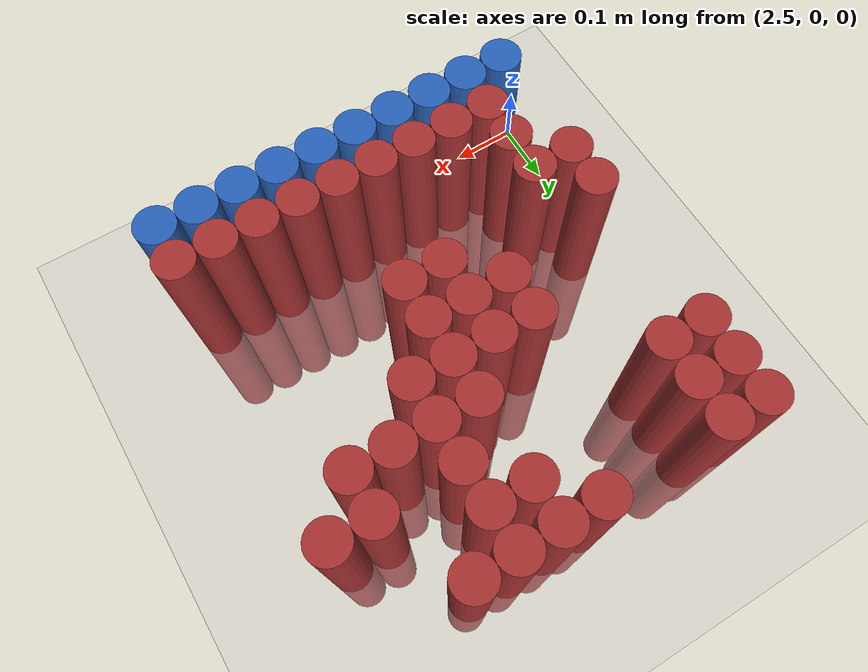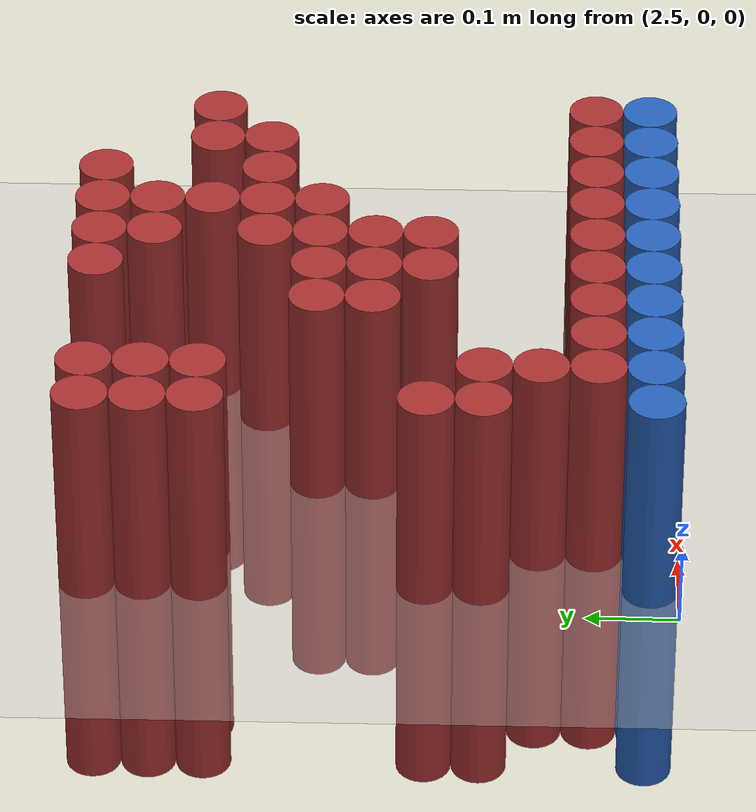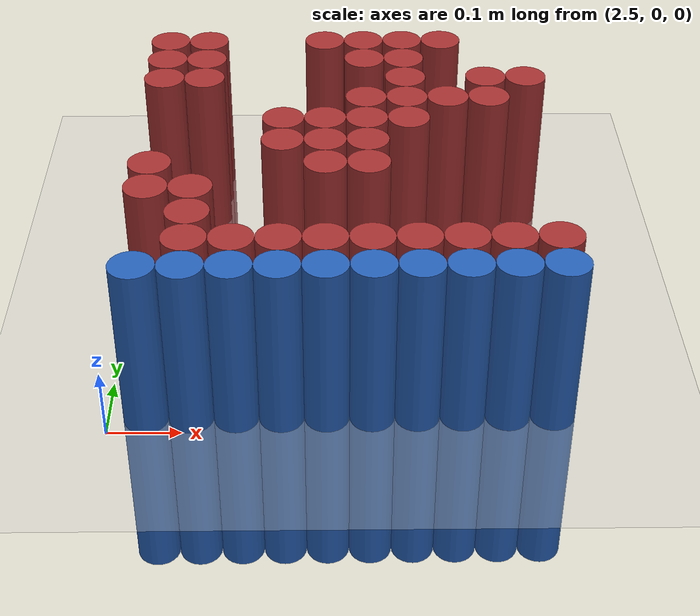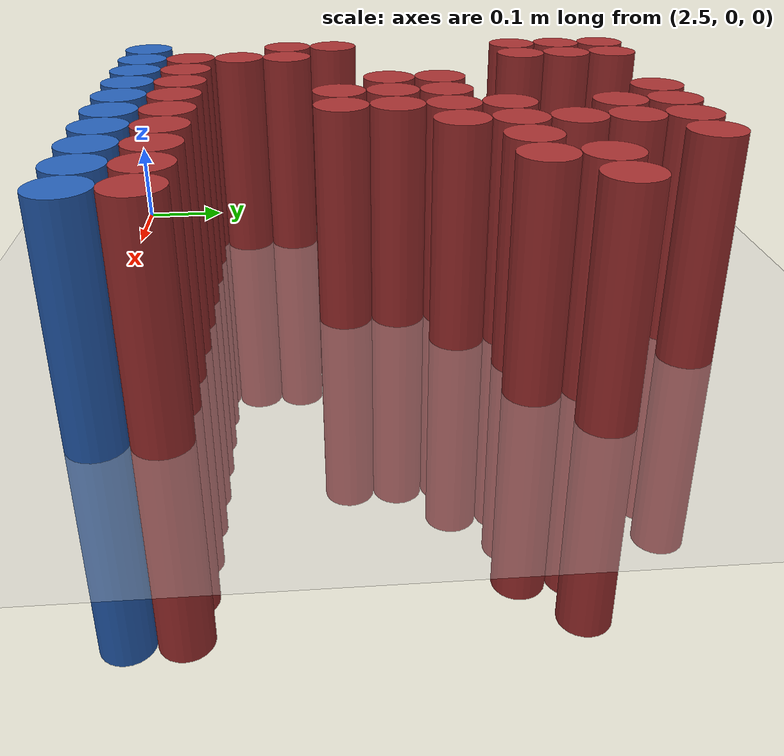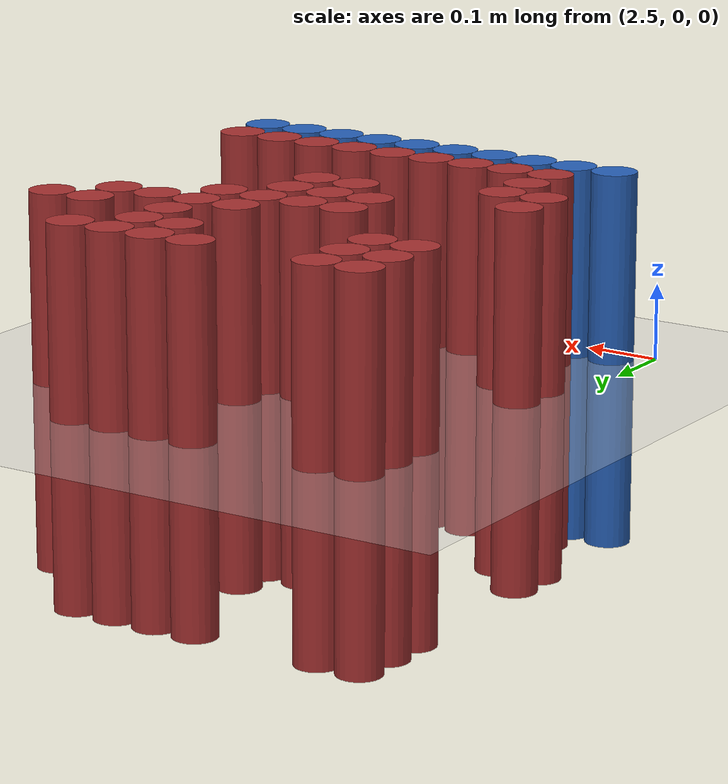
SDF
<sdf version="1.6">
 <world name="default">
  <model name="ground_plane">
   <static>1</static>
   <link name="link">
    <collision name="collision">
     <geometry><plane><normal>0 0 1</normal><size>100 100</size></plane></geometry>
     <surface><friction><ode><mu>100</mu><mu2>50</mu2></ode></friction></surface>
    </collision>
    <visual name="visual">
     <cast_shadows>0</cast_shadows>
     <geometry><plane><normal>0 0 1</normal><size>100 100</size></plane></geometry>
     <material>
      <script><uri>file://media/materials/scripts/gazebo.material</uri><name>Gazebo/Grey</name></script>
     </material>
    </visual>
   </link>
  </model>
  <model name="unit_cylinder_228">
   <static>1</static>
   <pose>2.550000 0.630000 0.000000 0.000000 0.000000 0.000000</pose>
   <link name="link">
    <inertial>
     <mass>1</mass>
     <inertia><ixx>0.145833</ixx><ixy>0</ixy><ixz>0</ixz><iyy>0.145833</iyy><iyz>0</iyz><izz>0.125</izz></inertia>
    </inertial>
    <collision name="collision">
     <geometry><cylinder><radius>0.030000</radius><length>0.5</length></cylinder></geometry>
    </collision>
    <visual name="visual">
     <geometry><cylinder><radius>0.030000</radius><length>0.5</length></cylinder></geometry>
     <material>
      <ambient>0.648000 0.192000 0.192000 1</ambient>
      <diffuse>0.648000 0.192000 0.192000 1</diffuse>
     </material>
     <material>
      <script><name>Gazebo/Grey</name><uri>file://media/materials/scripts/gazebo.material</uri></script>
     </material>
    </visual>
   </link>
  </model>
  <model name="unit_cylinder_229">
   <static>1</static>
   <pose>2.610000 0.630000 0.000000 0.000000 0.000000 0.000000</pose>
   <link name="link">
    <inertial>
     <mass>1</mass>
     <inertia><ixx>0.145833</ixx><ixy>0</ixy><ixz>0</ixz><iyy>0.145833</iyy><iyz>0</iyz><izz>0.125</izz></inertia>
    </inertial>
    <collision name="collision">
     <geometry><cylinder><radius>0.030000</radius><length>0.5</length></cylinder></geometry>
    </collision>
    <visual name="visual">
     <geometry><cylinder><radius>0.030000</radius><length>0.5</length></cylinder></geometry>
     <material>
      <ambient>0.648000 0.192000 0.192000 1</ambient>
      <diffuse>0.648000 0.192000 0.192000 1</diffuse>
     </material>
     <material>
      <script><name>Gazebo/Grey</name><uri>file://media/materials/scripts/gazebo.material</uri></script>
     </material>
    </visual>
   </link>
  </model>
  <model name="unit_cylinder_230">
   <static>1</static>
   <pose>2.790000 0.630000 0.000000 0.000000 0.000000 0.000000</pose>
   <link name="link">
    <inertial>
     <mass>1</mass>
     <inertia><ixx>0.145833</ixx><ixy>0</ixy><ixz>0</ixz><iyy>0.145833</iyy><iyz>0</iyz><izz>0.125</izz></inertia>
    </inertial>
    <collision name="collision">
     <geometry><cylinder><radius>0.030000</radius><length>0.5</length></cylinder></geometry>
    </collision>
    <visual name="visual">
     <geometry><cylinder><radius>0.030000</radius><length>0.5</length></cylinder></geometry>
     <material>
      <ambient>0.648000 0.192000 0.192000 1</ambient>
      <diffuse>0.648000 0.192000 0.192000 1</diffuse>
     </material>
     <material>
      <script><name>Gazebo/Grey</name><uri>file://media/materials/scripts/gazebo.material</uri></script>
     </material>
    </visual>
   </link>
  </model>
  <model name="unit_cylinder_231">
   <static>1</static>
   <pose>2.850000 0.630000 0.000000 0.000000 0.000000 0.000000</pose>
   <link name="link">
    <inertial>
     <mass>1</mass>
     <inertia><ixx>0.145833</ixx><ixy>0</ixy><ixz>0</ixz><iyy>0.145833</iyy><iyz>0</iyz><izz>0.125</izz></inertia>
    </inertial>
    <collision name="collision">
     <geometry><cylinder><radius>0.030000</radius><length>0.5</length></cylinder></geometry>
    </collision>
    <visual name="visual">
     <geometry><cylinder><radius>0.030000</radius><length>0.5</length></cylinder></geometry>
     <material>
      <ambient>0.648000 0.192000 0.192000 1</ambient>
      <diffuse>0.648000 0.192000 0.192000 1</diffuse>
     </material>
     <material>
      <script><name>Gazebo/Grey</name><uri>file://media/materials/scripts/gazebo.material</uri></script>
     </material>
    </visual>
   </link>
  </model>
  <model name="unit_cylinder_232">
   <static>1</static>
   <pose>2.910000 0.630000 0.000000 0.000000 0.000000 0.000000</pose>
   <link name="link">
    <inertial>
     <mass>1</mass>
     <inertia><ixx>0.145833</ixx><ixy>0</ixy><ixz>0</ixz><iyy>0.145833</iyy><iyz>0</iyz><izz>0.125</izz></inertia>
    </inertial>
    <collision name="collision">
     <geometry><cylinder><radius>0.030000</radius><length>0.5</length></cylinder></geometry>
    </collision>
    <visual name="visual">
     <geometry><cylinder><radius>0.030000</radius><length>0.5</length></cylinder></geometry>
     <material>
      <ambient>0.648000 0.192000 0.192000 1</ambient>
      <diffuse>0.648000 0.192000 0.192000 1</diffuse>
     </material>
     <material>
      <script><name>Gazebo/Grey</name><uri>file://media/materials/scripts/gazebo.material</uri></script>
     </material>
    </visual>
   </link>
  </model>
  <model name="unit_cylinder_233">
   <static>1</static>
   <pose>2.970000 0.630000 0.000000 0.000000 0.000000 0.000000</pose>
   <link name="link">
    <inertial>
     <mass>1</mass>
     <inertia><ixx>0.145833</ixx><ixy>0</ixy><ixz>0</ixz><iyy>0.145833</iyy><iyz>0</iyz><izz>0.125</izz></inertia>
    </inertial>
    <collision name="collision">
     <geometry><cylinder><radius>0.030000</radius><length>0.5</length></cylinder></geometry>
    </collision>
    <visual name="visual">
     <geometry><cylinder><radius>0.030000</radius><length>0.5</length></cylinder></geometry>
     <material>
      <ambient>0.648000 0.192000 0.192000 1</ambient>
      <diffuse>0.648000 0.192000 0.192000 1</diffuse>
     </material>
     <material>
      <script><name>Gazebo/Grey</name><uri>file://media/materials/scripts/gazebo.material</uri></script>
     </material>
    </visual>
   </link>
  </model>
  <model name="unit_cylinder_238">
   <static>1</static>
   <pose>2.550000 0.570000 0.000000 0.000000 0.000000 0.000000</pose>
   <link name="link">
    <inertial>
     <mass>1</mass>
     <inertia><ixx>0.145833</ixx><ixy>0</ixy><ixz>0</ixz><iyy>0.145833</iyy><iyz>0</iyz><izz>0.125</izz></inertia>
    </inertial>
    <collision name="collision">
     <geometry><cylinder><radius>0.030000</radius><length>0.5</length></cylinder></geometry>
    </collision>
    <visual name="visual">
     <geometry><cylinder><radius>0.030000</radius><length>0.5</length></cylinder></geometry>
     <material>
      <ambient>0.648000 0.192000 0.192000 1</ambient>
      <diffuse>0.648000 0.192000 0.192000 1</diffuse>
     </material>
     <material>
      <script><name>Gazebo/Grey</name><uri>file://media/materials/scripts/gazebo.material</uri></script>
     </material>
    </visual>
   </link>
  </model>
  <model name="unit_cylinder_239">
   <static>1</static>
   <pose>2.610000 0.570000 0.000000 0.000000 0.000000 0.000000</pose>
   <link name="link">
    <inertial>
     <mass>1</mass>
     <inertia><ixx>0.145833</ixx><ixy>0</ixy><ixz>0</ixz><iyy>0.145833</iyy><iyz>0</iyz><izz>0.125</izz></inertia>
    </inertial>
    <collision name="collision">
     <geometry><cylinder><radius>0.030000</radius><length>0.5</length></cylinder></geometry>
    </collision>
    <visual name="visual">
     <geometry><cylinder><radius>0.030000</radius><length>0.5</length></cylinder></geometry>
     <material>
      <ambient>0.648000 0.192000 0.192000 1</ambient>
      <diffuse>0.648000 0.192000 0.192000 1</diffuse>
     </material>
     <material>
      <script><name>Gazebo/Grey</name><uri>file://media/materials/scripts/gazebo.material</uri></script>
     </material>
    </visual>
   </link>
  </model>
  <model name="unit_cylinder_240">
   <static>1</static>
   <pose>2.850000 0.570000 0.000000 0.000000 0.000000 0.000000</pose>
   <link name="link">
    <inertial>
     <mass>1</mass>
     <inertia><ixx>0.145833</ixx><ixy>0</ixy><ixz>0</ixz><iyy>0.145833</iyy><iyz>0</iyz><izz>0.125</izz></inertia>
    </inertial>
    <collision name="collision">
     <geometry><cylinder><radius>0.030000</radius><length>0.5</length></cylinder></geometry>
    </collision>
    <visual name="visual">
     <geometry><cylinder><radius>0.030000</radius><length>0.5</length></cylinder></geometry>
     <material>
      <ambient>0.648000 0.192000 0.192000 1</ambient>
      <diffuse>0.648000 0.192000 0.192000 1</diffuse>
     </material>
     <material>
      <script><name>Gazebo/Grey</name><uri>file://media/materials/scripts/gazebo.material</uri></script>
     </material>
    </visual>
   </link>
  </model>
  <model name="unit_cylinder_241">
   <static>1</static>
   <pose>2.910000 0.570000 0.000000 0.000000 0.000000 0.000000</pose>
   <link name="link">
    <inertial>
     <mass>1</mass>
     <inertia><ixx>0.145833</ixx><ixy>0</ixy><ixz>0</ixz><iyy>0.145833</iyy><iyz>0</iyz><izz>0.125</izz></inertia>
    </inertial>
    <collision name="collision">
     <geometry><cylinder><radius>0.030000</radius><length>0.5</length></cylinder></geometry>
    </collision>
    <visual name="visual">
     <geometry><cylinder><radius>0.030000</radius><length>0.5</length></cylinder></geometry>
     <material>
      <ambient>0.648000 0.192000 0.192000 1</ambient>
      <diffuse>0.648000 0.192000 0.192000 1</diffuse>
     </material>
     <material>
      <script><name>Gazebo/Grey</name><uri>file://media/materials/scripts/gazebo.material</uri></script>
     </material>
    </visual>
   </link>
  </model>
  <model name="unit_cylinder_250">
   <static>1</static>
   <pose>2.550000 0.510000 0.000000 0.000000 0.000000 0.000000</pose>
   <link name="link">
    <inertial>
     <mass>1</mass>
     <inertia><ixx>0.145833</ixx><ixy>0</ixy><ixz>0</ixz><iyy>0.145833</iyy><iyz>0</iyz><izz>0.125</izz></inertia>
    </inertial>
    <collision name="collision">
     <geometry><cylinder><radius>0.030000</radius><length>0.5</length></cylinder></geometry>
    </collision>
    <visual name="visual">
     <geometry><cylinder><radius>0.030000</radius><length>0.5</length></cylinder></geometry>
     <material>
      <ambient>0.648000 0.192000 0.192000 1</ambient>
      <diffuse>0.648000 0.192000 0.192000 1</diffuse>
     </material>
     <material>
      <script><name>Gazebo/Grey</name><uri>file://media/materials/scripts/gazebo.material</uri></script>
     </material>
    </visual>
   </link>
  </model>
  <model name="unit_cylinder_251">
   <static>1</static>
   <pose>2.610000 0.510000 0.000000 0.000000 0.000000 0.000000</pose>
   <link name="link">
    <inertial>
     <mass>1</mass>
     <inertia><ixx>0.145833</ixx><ixy>0</ixy><ixz>0</ixz><iyy>0.145833</iyy><iyz>0</iyz><izz>0.125</izz></inertia>
    </inertial>
    <collision name="collision">
     <geometry><cylinder><radius>0.030000</radius><length>0.5</length></cylinder></geometry>
    </collision>
    <visual name="visual">
     <geometry><cylinder><radius>0.030000</radius><length>0.5</length></cylinder></geometry>
     <material>
      <ambient>0.648000 0.192000 0.192000 1</ambient>
      <diffuse>0.648000 0.192000 0.192000 1</diffuse>
     </material>
     <material>
      <script><name>Gazebo/Grey</name><uri>file://media/materials/scripts/gazebo.material</uri></script>
     </material>
    </visual>
   </link>
  </model>
  <model name="unit_cylinder_252">
   <static>1</static>
   <pose>2.910000 0.510000 0.000000 0.000000 0.000000 0.000000</pose>
   <link name="link">
    <inertial>
     <mass>1</mass>
     <inertia><ixx>0.145833</ixx><ixy>0</ixy><ixz>0</ixz><iyy>0.145833</iyy><iyz>0</iyz><izz>0.125</izz></inertia>
    </inertial>
    <collision name="collision">
     <geometry><cylinder><radius>0.030000</radius><length>0.5</length></cylinder></geometry>
    </collision>
    <visual name="visual">
     <geometry><cylinder><radius>0.030000</radius><length>0.5</length></cylinder></geometry>
     <material>
      <ambient>0.648000 0.192000 0.192000 1</ambient>
      <diffuse>0.648000 0.192000 0.192000 1</diffuse>
     </material>
     <material>
      <script><name>Gazebo/Grey</name><uri>file://media/materials/scripts/gazebo.material</uri></script>
     </material>
    </visual>
   </link>
  </model>
  <model name="unit_cylinder_253">
   <static>1</static>
   <pose>3.030000 0.510000 0.000000 0.000000 0.000000 0.000000</pose>
   <link name="link">
    <inertial>
     <mass>1</mass>
     <inertia><ixx>0.145833</ixx><ixy>0</ixy><ixz>0</ixz><iyy>0.145833</iyy><iyz>0</iyz><izz>0.125</izz></inertia>
    </inertial>
    <collision name="collision">
     <geometry><cylinder><radius>0.030000</radius><length>0.5</length></cylinder></geometry>
    </collision>
    <visual name="visual">
     <geometry><cylinder><radius>0.030000</radius><length>0.5</length></cylinder></geometry>
     <material>
      <ambient>0.648000 0.192000 0.192000 1</ambient>
      <diffuse>0.648000 0.192000 0.192000 1</diffuse>
     </material>
     <material>
      <script><name>Gazebo/Grey</name><uri>file://media/materials/scripts/gazebo.material</uri></script>
     </material>
    </visual>
   </link>
  </model>
  <model name="unit_cylinder_254">
   <static>1</static>
   <pose>3.090000 0.510000 0.000000 0.000000 0.000000 0.000000</pose>
   <link name="link">
    <inertial>
     <mass>1</mass>
     <inertia><ixx>0.145833</ixx><ixy>0</ixy><ixz>0</ixz><iyy>0.145833</iyy><iyz>0</iyz><izz>0.125</izz></inertia>
    </inertial>
    <collision name="collision">
     <geometry><cylinder><radius>0.030000</radius><length>0.5</length></cylinder></geometry>
    </collision>
    <visual name="visual">
     <geometry><cylinder><radius>0.030000</radius><length>0.5</length></cylinder></geometry>
     <material>
      <ambient>0.648000 0.192000 0.192000 1</ambient>
      <diffuse>0.648000 0.192000 0.192000 1</diffuse>
     </material>
     <material>
      <script><name>Gazebo/Grey</name><uri>file://media/materials/scripts/gazebo.material</uri></script>
     </material>
    </visual>
   </link>
  </model>
  <model name="unit_cylinder_261">
   <static>1</static>
   <pose>2.850000 0.450000 0.000000 0.000000 0.000000 0.000000</pose>
   <link name="link">
    <inertial>
     <mass>1</mass>
     <inertia><ixx>0.145833</ixx><ixy>0</ixy><ixz>0</ixz><iyy>0.145833</iyy><iyz>0</iyz><izz>0.125</izz></inertia>
    </inertial>
    <collision name="collision">
     <geometry><cylinder><radius>0.030000</radius><length>0.5</length></cylinder></geometry>
    </collision>
    <visual name="visual">
     <geometry><cylinder><radius>0.030000</radius><length>0.5</length></cylinder></geometry>
     <material>
      <ambient>0.648000 0.192000 0.192000 1</ambient>
      <diffuse>0.648000 0.192000 0.192000 1</diffuse>
     </material>
     <material>
      <script><name>Gazebo/Grey</name><uri>file://media/materials/scripts/gazebo.material</uri></script>
     </material>
    </visual>
   </link>
  </model>
  <model name="unit_cylinder_262">
   <static>1</static>
   <pose>2.910000 0.450000 0.000000 0.000000 0.000000 0.000000</pose>
   <link name="link">
    <inertial>
     <mass>1</mass>
     <inertia><ixx>0.145833</ixx><ixy>0</ixy><ixz>0</ixz><iyy>0.145833</iyy><iyz>0</iyz><izz>0.125</izz></inertia>
    </inertial>
    <collision name="collision">
     <geometry><cylinder><radius>0.030000</radius><length>0.5</length></cylinder></geometry>
    </collision>
    <visual name="visual">
     <geometry><cylinder><radius>0.030000</radius><length>0.5</length></cylinder></geometry>
     <material>
      <ambient>0.648000 0.192000 0.192000 1</ambient>
      <diffuse>0.648000 0.192000 0.192000 1</diffuse>
     </material>
     <material>
      <script><name>Gazebo/Grey</name><uri>file://media/materials/scripts/gazebo.material</uri></script>
     </material>
    </visual>
   </link>
  </model>
  <model name="unit_cylinder_263">
   <static>1</static>
   <pose>2.970000 0.450000 0.000000 0.000000 0.000000 0.000000</pose>
   <link name="link">
    <inertial>
     <mass>1</mass>
     <inertia><ixx>0.145833</ixx><ixy>0</ixy><ixz>0</ixz><iyy>0.145833</iyy><iyz>0</iyz><izz>0.125</izz></inertia>
    </inertial>
    <collision name="collision">
     <geometry><cylinder><radius>0.030000</radius><length>0.5</length></cylinder></geometry>
    </collision>
    <visual name="visual">
     <geometry><cylinder><radius>0.030000</radius><length>0.5</length></cylinder></geometry>
     <material>
      <ambient>0.648000 0.192000 0.192000 1</ambient>
      <diffuse>0.648000 0.192000 0.192000 1</diffuse>
     </material>
     <material>
      <script><name>Gazebo/Grey</name><uri>file://media/materials/scripts/gazebo.material</uri></script>
     </material>
    </visual>
   </link>
  </model>
  <model name="unit_cylinder_264">
   <static>1</static>
   <pose>3.030000 0.450000 0.000000 0.000000 0.000000 0.000000</pose>
   <link name="link">
    <inertial>
     <mass>1</mass>
     <inertia><ixx>0.145833</ixx><ixy>0</ixy><ixz>0</ixz><iyy>0.145833</iyy><iyz>0</iyz><izz>0.125</izz></inertia>
    </inertial>
    <collision name="collision">
     <geometry><cylinder><radius>0.030000</radius><length>0.5</length></cylinder></geometry>
    </collision>
    <visual name="visual">
     <geometry><cylinder><radius>0.030000</radius><length>0.5</length></cylinder></geometry>
     <material>
      <ambient>0.648000 0.192000 0.192000 1</ambient>
      <diffuse>0.648000 0.192000 0.192000 1</diffuse>
     </material>
     <material>
      <script><name>Gazebo/Grey</name><uri>file://media/materials/scripts/gazebo.material</uri></script>
     </material>
    </visual>
   </link>
  </model>
  <model name="unit_cylinder_268">
   <static>1</static>
   <pose>2.730000 0.390000 0.000000 0.000000 0.000000 0.000000</pose>
   <link name="link">
    <inertial>
     <mass>1</mass>
     <inertia><ixx>0.145833</ixx><ixy>0</ixy><ixz>0</ixz><iyy>0.145833</iyy><iyz>0</iyz><izz>0.125</izz></inertia>
    </inertial>
    <collision name="collision">
     <geometry><cylinder><radius>0.030000</radius><length>0.5</length></cylinder></geometry>
    </collision>
    <visual name="visual">
     <geometry><cylinder><radius>0.030000</radius><length>0.5</length></cylinder></geometry>
     <material>
      <ambient>0.648000 0.192000 0.192000 1</ambient>
      <diffuse>0.648000 0.192000 0.192000 1</diffuse>
     </material>
     <material>
      <script><name>Gazebo/Grey</name><uri>file://media/materials/scripts/gazebo.material</uri></script>
     </material>
    </visual>
   </link>
  </model>
  <model name="unit_cylinder_269">
   <static>1</static>
   <pose>2.790000 0.390000 0.000000 0.000000 0.000000 0.000000</pose>
   <link name="link">
    <inertial>
     <mass>1</mass>
     <inertia><ixx>0.145833</ixx><ixy>0</ixy><ixz>0</ixz><iyy>0.145833</iyy><iyz>0</iyz><izz>0.125</izz></inertia>
    </inertial>
    <collision name="collision">
     <geometry><cylinder><radius>0.030000</radius><length>0.5</length></cylinder></geometry>
    </collision>
    <visual name="visual">
     <geometry><cylinder><radius>0.030000</radius><length>0.5</length></cylinder></geometry>
     <material>
      <ambient>0.648000 0.192000 0.192000 1</ambient>
      <diffuse>0.648000 0.192000 0.192000 1</diffuse>
     </material>
     <material>
      <script><name>Gazebo/Grey</name><uri>file://media/materials/scripts/gazebo.material</uri></script>
     </material>
    </visual>
   </link>
  </model>
  <model name="unit_cylinder_270">
   <static>1</static>
   <pose>2.850000 0.390000 0.000000 0.000000 0.000000 0.000000</pose>
   <link name="link">
    <inertial>
     <mass>1</mass>
     <inertia><ixx>0.145833</ixx><ixy>0</ixy><ixz>0</ixz><iyy>0.145833</iyy><iyz>0</iyz><izz>0.125</izz></inertia>
    </inertial>
    <collision name="collision">
     <geometry><cylinder><radius>0.030000</radius><length>0.5</length></cylinder></geometry>
    </collision>
    <visual name="visual">
     <geometry><cylinder><radius>0.030000</radius><length>0.5</length></cylinder></geometry>
     <material>
      <ambient>0.648000 0.192000 0.192000 1</ambient>
      <diffuse>0.648000 0.192000 0.192000 1</diffuse>
     </material>
     <material>
      <script><name>Gazebo/Grey</name><uri>file://media/materials/scripts/gazebo.material</uri></script>
     </material>
    </visual>
   </link>
  </model>
  <model name="unit_cylinder_271">
   <static>1</static>
   <pose>2.910000 0.390000 0.000000 0.000000 0.000000 0.000000</pose>
   <link name="link">
    <inertial>
     <mass>1</mass>
     <inertia><ixx>0.145833</ixx><ixy>0</ixy><ixz>0</ixz><iyy>0.145833</iyy><iyz>0</iyz><izz>0.125</izz></inertia>
    </inertial>
    <collision name="collision">
     <geometry><cylinder><radius>0.030000</radius><length>0.5</length></cylinder></geometry>
    </collision>
    <visual name="visual">
     <geometry><cylinder><radius>0.030000</radius><length>0.5</length></cylinder></geometry>
     <material>
      <ambient>0.648000 0.192000 0.192000 1</ambient>
      <diffuse>0.648000 0.192000 0.192000 1</diffuse>
     </material>
     <material>
      <script><name>Gazebo/Grey</name><uri>file://media/materials/scripts/gazebo.material</uri></script>
     </material>
    </visual>
   </link>
  </model>
  <model name="unit_cylinder_274">
   <static>1</static>
   <pose>2.730000 0.330000 0.000000 0.000000 0.000000 0.000000</pose>
   <link name="link">
    <inertial>
     <mass>1</mass>
     <inertia><ixx>0.145833</ixx><ixy>0</ixy><ixz>0</ixz><iyy>0.145833</iyy><iyz>0</iyz><izz>0.125</izz></inertia>
    </inertial>
    <collision name="collision">
     <geometry><cylinder><radius>0.030000</radius><length>0.5</length></cylinder></geometry>
    </collision>
    <visual name="visual">
     <geometry><cylinder><radius>0.030000</radius><length>0.5</length></cylinder></geometry>
     <material>
      <ambient>0.648000 0.192000 0.192000 1</ambient>
      <diffuse>0.648000 0.192000 0.192000 1</diffuse>
     </material>
     <material>
      <script><name>Gazebo/Grey</name><uri>file://media/materials/scripts/gazebo.material</uri></script>
     </material>
    </visual>
   </link>
  </model>
  <model name="unit_cylinder_275">
   <static>1</static>
   <pose>2.790000 0.330000 0.000000 0.000000 0.000000 0.000000</pose>
   <link name="link">
    <inertial>
     <mass>1</mass>
     <inertia><ixx>0.145833</ixx><ixy>0</ixy><ixz>0</ixz><iyy>0.145833</iyy><iyz>0</iyz><izz>0.125</izz></inertia>
    </inertial>
    <collision name="collision">
     <geometry><cylinder><radius>0.030000</radius><length>0.5</length></cylinder></geometry>
    </collision>
    <visual name="visual">
     <geometry><cylinder><radius>0.030000</radius><length>0.5</length></cylinder></geometry>
     <material>
      <ambient>0.648000 0.192000 0.192000 1</ambient>
      <diffuse>0.648000 0.192000 0.192000 1</diffuse>
     </material>
     <material>
      <script><name>Gazebo/Grey</name><uri>file://media/materials/scripts/gazebo.material</uri></script>
     </material>
    </visual>
   </link>
  </model>
  <model name="unit_cylinder_276">
   <static>1</static>
   <pose>2.850000 0.330000 0.000000 0.000000 0.000000 0.000000</pose>
   <link name="link">
    <inertial>
     <mass>1</mass>
     <inertia><ixx>0.145833</ixx><ixy>0</ixy><ixz>0</ixz><iyy>0.145833</iyy><iyz>0</iyz><izz>0.125</izz></inertia>
    </inertial>
    <collision name="collision">
     <geometry><cylinder><radius>0.030000</radius><length>0.5</length></cylinder></geometry>
    </collision>
    <visual name="visual">
     <geometry><cylinder><radius>0.030000</radius><length>0.5</length></cylinder></geometry>
     <material>
      <ambient>0.648000 0.192000 0.192000 1</ambient>
      <diffuse>0.648000 0.192000 0.192000 1</diffuse>
     </material>
     <material>
      <script><name>Gazebo/Grey</name><uri>file://media/materials/scripts/gazebo.material</uri></script>
     </material>
    </visual>
   </link>
  </model>
  <model name="unit_cylinder_283">
   <static>1</static>
   <pose>2.550000 0.270000 0.000000 0.000000 0.000000 0.000000</pose>
   <link name="link">
    <inertial>
     <mass>1</mass>
     <inertia><ixx>0.145833</ixx><ixy>0</ixy><ixz>0</ixz><iyy>0.145833</iyy><iyz>0</iyz><izz>0.125</izz></inertia>
    </inertial>
    <collision name="collision">
     <geometry><cylinder><radius>0.030000</radius><length>0.5</length></cylinder></geometry>
    </collision>
    <visual name="visual">
     <geometry><cylinder><radius>0.030000</radius><length>0.5</length></cylinder></geometry>
     <material>
      <ambient>0.648000 0.192000 0.192000 1</ambient>
      <diffuse>0.648000 0.192000 0.192000 1</diffuse>
     </material>
     <material>
      <script><name>Gazebo/Grey</name><uri>file://media/materials/scripts/gazebo.material</uri></script>
     </material>
    </visual>
   </link>
  </model>
  <model name="unit_cylinder_284">
   <static>1</static>
   <pose>2.790000 0.270000 0.000000 0.000000 0.000000 0.000000</pose>
   <link name="link">
    <inertial>
     <mass>1</mass>
     <inertia><ixx>0.145833</ixx><ixy>0</ixy><ixz>0</ixz><iyy>0.145833</iyy><iyz>0</iyz><izz>0.125</izz></inertia>
    </inertial>
    <collision name="collision">
     <geometry><cylinder><radius>0.030000</radius><length>0.5</length></cylinder></geometry>
    </collision>
    <visual name="visual">
     <geometry><cylinder><radius>0.030000</radius><length>0.5</length></cylinder></geometry>
     <material>
      <ambient>0.648000 0.192000 0.192000 1</ambient>
      <diffuse>0.648000 0.192000 0.192000 1</diffuse>
     </material>
     <material>
      <script><name>Gazebo/Grey</name><uri>file://media/materials/scripts/gazebo.material</uri></script>
     </material>
    </visual>
   </link>
  </model>
  <model name="unit_cylinder_285">
   <static>1</static>
   <pose>2.850000 0.270000 0.000000 0.000000 0.000000 0.000000</pose>
   <link name="link">
    <inertial>
     <mass>1</mass>
     <inertia><ixx>0.145833</ixx><ixy>0</ixy><ixz>0</ixz><iyy>0.145833</iyy><iyz>0</iyz><izz>0.125</izz></inertia>
    </inertial>
    <collision name="collision">
     <geometry><cylinder><radius>0.030000</radius><length>0.5</length></cylinder></geometry>
    </collision>
    <visual name="visual">
     <geometry><cylinder><radius>0.030000</radius><length>0.5</length></cylinder></geometry>
     <material>
      <ambient>0.648000 0.192000 0.192000 1</ambient>
      <diffuse>0.648000 0.192000 0.192000 1</diffuse>
     </material>
     <material>
      <script><name>Gazebo/Grey</name><uri>file://media/materials/scripts/gazebo.material</uri></script>
     </material>
    </visual>
   </link>
  </model>
  <model name="unit_cylinder_293">
   <static>1</static>
   <pose>2.550000 0.210000 0.000000 0.000000 0.000000 0.000000</pose>
   <link name="link">
    <inertial>
     <mass>1</mass>
     <inertia><ixx>0.145833</ixx><ixy>0</ixy><ixz>0</ixz><iyy>0.145833</iyy><iyz>0</iyz><izz>0.125</izz></inertia>
    </inertial>
    <collision name="collision">
     <geometry><cylinder><radius>0.030000</radius><length>0.5</length></cylinder></geometry>
    </collision>
    <visual name="visual">
     <geometry><cylinder><radius>0.030000</radius><length>0.5</length></cylinder></geometry>
     <material>
      <ambient>0.648000 0.192000 0.192000 1</ambient>
      <diffuse>0.648000 0.192000 0.192000 1</diffuse>
     </material>
     <material>
      <script><name>Gazebo/Grey</name><uri>file://media/materials/scripts/gazebo.material</uri></script>
     </material>
    </visual>
   </link>
  </model>
  <model name="unit_cylinder_294">
   <static>1</static>
   <pose>2.610000 0.210000 0.000000 0.000000 0.000000 0.000000</pose>
   <link name="link">
    <inertial>
     <mass>1</mass>
     <inertia><ixx>0.145833</ixx><ixy>0</ixy><ixz>0</ixz><iyy>0.145833</iyy><iyz>0</iyz><izz>0.125</izz></inertia>
    </inertial>
    <collision name="collision">
     <geometry><cylinder><radius>0.030000</radius><length>0.5</length></cylinder></geometry>
    </collision>
    <visual name="visual">
     <geometry><cylinder><radius>0.030000</radius><length>0.5</length></cylinder></geometry>
     <material>
      <ambient>0.648000 0.192000 0.192000 1</ambient>
      <diffuse>0.648000 0.192000 0.192000 1</diffuse>
     </material>
     <material>
      <script><name>Gazebo/Grey</name><uri>file://media/materials/scripts/gazebo.material</uri></script>
     </material>
    </visual>
   </link>
  </model>
  <model name="unit_cylinder_300">
   <static>1</static>
   <pose>2.610000 0.150000 0.000000 0.000000 0.000000 0.000000</pose>
   <link name="link">
    <inertial>
     <mass>1</mass>
     <inertia><ixx>0.145833</ixx><ixy>0</ixy><ixz>0</ixz><iyy>0.145833</iyy><iyz>0</iyz><izz>0.125</izz></inertia>
    </inertial>
    <collision name="collision">
     <geometry><cylinder><radius>0.030000</radius><length>0.5</length></cylinder></geometry>
    </collision>
    <visual name="visual">
     <geometry><cylinder><radius>0.030000</radius><length>0.5</length></cylinder></geometry>
     <material>
      <ambient>0.648000 0.192000 0.192000 1</ambient>
      <diffuse>0.648000 0.192000 0.192000 1</diffuse>
     </material>
     <material>
      <script><name>Gazebo/Grey</name><uri>file://media/materials/scripts/gazebo.material</uri></script>
     </material>
    </visual>
   </link>
  </model>
  <model name="unit_cylinder_309">
   <static>1</static>
   <pose>2.610000 0.090000 0.000000 0.000000 0.000000 0.000000</pose>
   <link name="link">
    <inertial>
     <mass>1</mass>
     <inertia><ixx>0.145833</ixx><ixy>0</ixy><ixz>0</ixz><iyy>0.145833</iyy><iyz>0</iyz><izz>0.125</izz></inertia>
    </inertial>
    <collision name="collision">
     <geometry><cylinder><radius>0.030000</radius><length>0.5</length></cylinder></geometry>
    </collision>
    <visual name="visual">
     <geometry><cylinder><radius>0.030000</radius><length>0.5</length></cylinder></geometry>
     <material>
      <ambient>0.648000 0.192000 0.192000 1</ambient>
      <diffuse>0.648000 0.192000 0.192000 1</diffuse>
     </material>
     <material>
      <script><name>Gazebo/Grey</name><uri>file://media/materials/scripts/gazebo.material</uri></script>
     </material>
    </visual>
   </link>
  </model>
  <model name="unit_cylinder_310">
   <static>1</static>
   <pose>2.670000 0.090000 0.000000 0.000000 0.000000 0.000000</pose>
   <link name="link">
    <inertial>
     <mass>1</mass>
     <inertia><ixx>0.145833</ixx><ixy>0</ixy><ixz>0</ixz><iyy>0.145833</iyy><iyz>0</iyz><izz>0.125</izz></inertia>
    </inertial>
    <collision name="collision">
     <geometry><cylinder><radius>0.030000</radius><length>0.5</length></cylinder></geometry>
    </collision>
    <visual name="visual">
     <geometry><cylinder><radius>0.030000</radius><length>0.5</length></cylinder></geometry>
     <material>
      <ambient>0.648000 0.192000 0.192000 1</ambient>
      <diffuse>0.648000 0.192000 0.192000 1</diffuse>
     </material>
     <material>
      <script><name>Gazebo/Grey</name><uri>file://media/materials/scripts/gazebo.material</uri></script>
     </material>
    </visual>
   </link>
  </model>
  <model name="unit_cylinder_311">
   <static>1</static>
   <pose>2.730000 0.090000 0.000000 0.000000 0.000000 0.000000</pose>
   <link name="link">
    <inertial>
     <mass>1</mass>
     <inertia><ixx>0.145833</ixx><ixy>0</ixy><ixz>0</ixz><iyy>0.145833</iyy><iyz>0</iyz><izz>0.125</izz></inertia>
    </inertial>
    <collision name="collision">
     <geometry><cylinder><radius>0.030000</radius><length>0.5</length></cylinder></geometry>
    </collision>
    <visual name="visual">
     <geometry><cylinder><radius>0.030000</radius><length>0.5</length></cylinder></geometry>
     <material>
      <ambient>0.648000 0.192000 0.192000 1</ambient>
      <diffuse>0.648000 0.192000 0.192000 1</diffuse>
     </material>
     <material>
      <script><name>Gazebo/Grey</name><uri>file://media/materials/scripts/gazebo.material</uri></script>
     </material>
    </visual>
   </link>
  </model>
  <model name="unit_cylinder_312">
   <static>1</static>
   <pose>2.790000 0.090000 0.000000 0.000000 0.000000 0.000000</pose>
   <link name="link">
    <inertial>
     <mass>1</mass>
     <inertia><ixx>0.145833</ixx><ixy>0</ixy><ixz>0</ixz><iyy>0.145833</iyy><iyz>0</iyz><izz>0.125</izz></inertia>
    </inertial>
    <collision name="collision">
     <geometry><cylinder><radius>0.030000</radius><length>0.5</length></cylinder></geometry>
    </collision>
    <visual name="visual">
     <geometry><cylinder><radius>0.030000</radius><length>0.5</length></cylinder></geometry>
     <material>
      <ambient>0.648000 0.192000 0.192000 1</ambient>
      <diffuse>0.648000 0.192000 0.192000 1</diffuse>
     </material>
     <material>
      <script><name>Gazebo/Grey</name><uri>file://media/materials/scripts/gazebo.material</uri></script>
     </material>
    </visual>
   </link>
  </model>
  <model name="unit_cylinder_313">
   <static>1</static>
   <pose>2.850000 0.090000 0.000000 0.000000 0.000000 0.000000</pose>
   <link name="link">
    <inertial>
     <mass>1</mass>
     <inertia><ixx>0.145833</ixx><ixy>0</ixy><ixz>0</ixz><iyy>0.145833</iyy><iyz>0</iyz><izz>0.125</izz></inertia>
    </inertial>
    <collision name="collision">
     <geometry><cylinder><radius>0.030000</radius><length>0.5</length></cylinder></geometry>
    </collision>
    <visual name="visual">
     <geometry><cylinder><radius>0.030000</radius><length>0.5</length></cylinder></geometry>
     <material>
      <ambient>0.648000 0.192000 0.192000 1</ambient>
      <diffuse>0.648000 0.192000 0.192000 1</diffuse>
     </material>
     <material>
      <script><name>Gazebo/Grey</name><uri>file://media/materials/scripts/gazebo.material</uri></script>
     </material>
    </visual>
   </link>
  </model>
  <model name="unit_cylinder_314">
   <static>1</static>
   <pose>2.910000 0.090000 0.000000 0.000000 0.000000 0.000000</pose>
   <link name="link">
    <inertial>
     <mass>1</mass>
     <inertia><ixx>0.145833</ixx><ixy>0</ixy><ixz>0</ixz><iyy>0.145833</iyy><iyz>0</iyz><izz>0.125</izz></inertia>
    </inertial>
    <collision name="collision">
     <geometry><cylinder><radius>0.030000</radius><length>0.5</length></cylinder></geometry>
    </collision>
    <visual name="visual">
     <geometry><cylinder><radius>0.030000</radius><length>0.5</length></cylinder></geometry>
     <material>
      <ambient>0.648000 0.192000 0.192000 1</ambient>
      <diffuse>0.648000 0.192000 0.192000 1</diffuse>
     </material>
     <material>
      <script><name>Gazebo/Grey</name><uri>file://media/materials/scripts/gazebo.material</uri></script>
     </material>
    </visual>
   </link>
  </model>
  <model name="unit_cylinder_315">
   <static>1</static>
   <pose>2.970000 0.090000 0.000000 0.000000 0.000000 0.000000</pose>
   <link name="link">
    <inertial>
     <mass>1</mass>
     <inertia><ixx>0.145833</ixx><ixy>0</ixy><ixz>0</ixz><iyy>0.145833</iyy><iyz>0</iyz><izz>0.125</izz></inertia>
    </inertial>
    <collision name="collision">
     <geometry><cylinder><radius>0.030000</radius><length>0.5</length></cylinder></geometry>
    </collision>
    <visual name="visual">
     <geometry><cylinder><radius>0.030000</radius><length>0.5</length></cylinder></geometry>
     <material>
      <ambient>0.648000 0.192000 0.192000 1</ambient>
      <diffuse>0.648000 0.192000 0.192000 1</diffuse>
     </material>
     <material>
      <script><name>Gazebo/Grey</name><uri>file://media/materials/scripts/gazebo.material</uri></script>
     </material>
    </visual>
   </link>
  </model>
  <model name="unit_cylinder_316">
   <static>1</static>
   <pose>3.030000 0.090000 0.000000 0.000000 0.000000 0.000000</pose>
   <link name="link">
    <inertial>
     <mass>1</mass>
     <inertia><ixx>0.145833</ixx><ixy>0</ixy><ixz>0</ixz><iyy>0.145833</iyy><iyz>0</iyz><izz>0.125</izz></inertia>
    </inertial>
    <collision name="collision">
     <geometry><cylinder><radius>0.030000</radius><length>0.5</length></cylinder></geometry>
    </collision>
    <visual name="visual">
     <geometry><cylinder><radius>0.030000</radius><length>0.5</length></cylinder></geometry>
     <material>
      <ambient>0.648000 0.192000 0.192000 1</ambient>
      <diffuse>0.648000 0.192000 0.192000 1</diffuse>
     </material>
     <material>
      <script><name>Gazebo/Grey</name><uri>file://media/materials/scripts/gazebo.material</uri></script>
     </material>
    </visual>
   </link>
  </model>
  <model name="unit_cylinder_317">
   <static>1</static>
   <pose>3.090000 0.090000 0.000000 0.000000 0.000000 0.000000</pose>
   <link name="link">
    <inertial>
     <mass>1</mass>
     <inertia><ixx>0.145833</ixx><ixy>0</ixy><ixz>0</ixz><iyy>0.145833</iyy><iyz>0</iyz><izz>0.125</izz></inertia>
    </inertial>
    <collision name="collision">
     <geometry><cylinder><radius>0.030000</radius><length>0.5</length></cylinder></geometry>
    </collision>
    <visual name="visual">
     <geometry><cylinder><radius>0.030000</radius><length>0.5</length></cylinder></geometry>
     <material>
      <ambient>0.648000 0.192000 0.192000 1</ambient>
      <diffuse>0.648000 0.192000 0.192000 1</diffuse>
     </material>
     <material>
      <script><name>Gazebo/Grey</name><uri>file://media/materials/scripts/gazebo.material</uri></script>
     </material>
    </visual>
   </link>
  </model>
  <model name="unit_cylinder_335">
   <static>1</static>
   <pose>2.550000 0.030000 0.000000 0.000000 0.000000 0.000000</pose>
   <link name="link">
    <inertial>
     <mass>1</mass>
     <inertia><ixx>0.145833</ixx><ixy>0</ixy><ixz>0</ixz><iyy>0.145833</iyy><iyz>0</iyz><izz>0.125</izz></inertia>
    </inertial>
    <collision name="collision">
     <geometry><cylinder><radius>0.030000</radius><length>0.5</length></cylinder></geometry>
    </collision>
    <visual name="visual">
     <geometry><cylinder><radius>0.030000</radius><length>0.5</length></cylinder></geometry>
     <material>
      <ambient>0.152000 0.379000 0.720000 1</ambient>
      <diffuse>0.152000 0.379000 0.720000 1</diffuse>
     </material>
     <material>
      <script><name>Gazebo/Grey</name><uri>file://media/materials/scripts/gazebo.material</uri></script>
     </material>
    </visual>
   </link>
  </model>
  <model name="unit_cylinder_336">
   <static>1</static>
   <pose>2.610000 0.030000 0.000000 0.000000 0.000000 0.000000</pose>
   <link name="link">
    <inertial>
     <mass>1</mass>
     <inertia><ixx>0.145833</ixx><ixy>0</ixy><ixz>0</ixz><iyy>0.145833</iyy><iyz>0</iyz><izz>0.125</izz></inertia>
    </inertial>
    <collision name="collision">
     <geometry><cylinder><radius>0.030000</radius><length>0.5</length></cylinder></geometry>
    </collision>
    <visual name="visual">
     <geometry><cylinder><radius>0.030000</radius><length>0.5</length></cylinder></geometry>
     <material>
      <ambient>0.152000 0.379000 0.720000 1</ambient>
      <diffuse>0.152000 0.379000 0.720000 1</diffuse>
     </material>
     <material>
      <script><name>Gazebo/Grey</name><uri>file://media/materials/scripts/gazebo.material</uri></script>
     </material>
    </visual>
   </link>
  </model>
  <model name="unit_cylinder_337">
   <static>1</static>
   <pose>2.670000 0.030000 0.000000 0.000000 0.000000 0.000000</pose>
   <link name="link">
    <inertial>
     <mass>1</mass>
     <inertia><ixx>0.145833</ixx><ixy>0</ixy><ixz>0</ixz><iyy>0.145833</iyy><iyz>0</iyz><izz>0.125</izz></inertia>
    </inertial>
    <collision name="collision">
     <geometry><cylinder><radius>0.030000</radius><length>0.5</length></cylinder></geometry>
    </collision>
    <visual name="visual">
     <geometry><cylinder><radius>0.030000</radius><length>0.5</length></cylinder></geometry>
     <material>
      <ambient>0.152000 0.379000 0.720000 1</ambient>
      <diffuse>0.152000 0.379000 0.720000 1</diffuse>
     </material>
     <material>
      <script><name>Gazebo/Grey</name><uri>file://media/materials/scripts/gazebo.material</uri></script>
     </material>
    </visual>
   </link>
  </model>
  <model name="unit_cylinder_338">
   <static>1</static>
   <pose>2.730000 0.030000 0.000000 0.000000 0.000000 0.000000</pose>
   <link name="link">
    <inertial>
     <mass>1</mass>
     <inertia><ixx>0.145833</ixx><ixy>0</ixy><ixz>0</ixz><iyy>0.145833</iyy><iyz>0</iyz><izz>0.125</izz></inertia>
    </inertial>
    <collision name="collision">
     <geometry><cylinder><radius>0.030000</radius><length>0.5</length></cylinder></geometry>
    </collision>
    <visual name="visual">
     <geometry><cylinder><radius>0.030000</radius><length>0.5</length></cylinder></geometry>
     <material>
      <ambient>0.152000 0.379000 0.720000 1</ambient>
      <diffuse>0.152000 0.379000 0.720000 1</diffuse>
     </material>
     <material>
      <script><name>Gazebo/Grey</name><uri>file://media/materials/scripts/gazebo.material</uri></script>
     </material>
    </visual>
   </link>
  </model>
  <model name="unit_cylinder_339">
   <static>1</static>
   <pose>2.790000 0.030000 0.000000 0.000000 0.000000 0.000000</pose>
   <link name="link">
    <inertial>
     <mass>1</mass>
     <inertia><ixx>0.145833</ixx><ixy>0</ixy><ixz>0</ixz><iyy>0.145833</iyy><iyz>0</iyz><izz>0.125</izz></inertia>
    </inertial>
    <collision name="collision">
     <geometry><cylinder><radius>0.030000</radius><length>0.5</length></cylinder></geometry>
    </collision>
    <visual name="visual">
     <geometry><cylinder><radius>0.030000</radius><length>0.5</length></cylinder></geometry>
     <material>
      <ambient>0.152000 0.379000 0.720000 1</ambient>
      <diffuse>0.152000 0.379000 0.720000 1</diffuse>
     </material>
     <material>
      <script><name>Gazebo/Grey</name><uri>file://media/materials/scripts/gazebo.material</uri></script>
     </material>
    </visual>
   </link>
  </model>
  <model name="unit_cylinder_340">
   <static>1</static>
   <pose>2.850000 0.030000 0.000000 0.000000 0.000000 0.000000</pose>
   <link name="link">
    <inertial>
     <mass>1</mass>
     <inertia><ixx>0.145833</ixx><ixy>0</ixy><ixz>0</ixz><iyy>0.145833</iyy><iyz>0</iyz><izz>0.125</izz></inertia>
    </inertial>
    <collision name="collision">
     <geometry><cylinder><radius>0.030000</radius><length>0.5</length></cylinder></geometry>
    </collision>
    <visual name="visual">
     <geometry><cylinder><radius>0.030000</radius><length>0.5</length></cylinder></geometry>
     <material>
      <ambient>0.152000 0.379000 0.720000 1</ambient>
      <diffuse>0.152000 0.379000 0.720000 1</diffuse>
     </material>
     <material>
      <script><name>Gazebo/Grey</name><uri>file://media/materials/scripts/gazebo.material</uri></script>
     </material>
    </visual>
   </link>
  </model>
  <model name="unit_cylinder_341">
   <static>1</static>
   <pose>2.910000 0.030000 0.000000 0.000000 0.000000 0.000000</pose>
   <link name="link">
    <inertial>
     <mass>1</mass>
     <inertia><ixx>0.145833</ixx><ixy>0</ixy><ixz>0</ixz><iyy>0.145833</iyy><iyz>0</iyz><izz>0.125</izz></inertia>
    </inertial>
    <collision name="collision">
     <geometry><cylinder><radius>0.030000</radius><length>0.5</length></cylinder></geometry>
    </collision>
    <visual name="visual">
     <geometry><cylinder><radius>0.030000</radius><length>0.5</length></cylinder></geometry>
     <material>
      <ambient>0.152000 0.379000 0.720000 1</ambient>
      <diffuse>0.152000 0.379000 0.720000 1</diffuse>
     </material>
     <material>
      <script><name>Gazebo/Grey</name><uri>file://media/materials/scripts/gazebo.material</uri></script>
     </material>
    </visual>
   </link>
  </model>
  <model name="unit_cylinder_342">
   <static>1</static>
   <pose>2.970000 0.030000 0.000000 0.000000 0.000000 0.000000</pose>
   <link name="link">
    <inertial>
     <mass>1</mass>
     <inertia><ixx>0.145833</ixx><ixy>0</ixy><ixz>0</ixz><iyy>0.145833</iyy><iyz>0</iyz><izz>0.125</izz></inertia>
    </inertial>
    <collision name="collision">
     <geometry><cylinder><radius>0.030000</radius><length>0.5</length></cylinder></geometry>
    </collision>
    <visual name="visual">
     <geometry><cylinder><radius>0.030000</radius><length>0.5</length></cylinder></geometry>
     <material>
      <ambient>0.152000 0.379000 0.720000 1</ambient>
      <diffuse>0.152000 0.379000 0.720000 1</diffuse>
     </material>
     <material>
      <script><name>Gazebo/Grey</name><uri>file://media/materials/scripts/gazebo.material</uri></script>
     </material>
    </visual>
   </link>
  </model>
  <model name="unit_cylinder_343">
   <static>1</static>
   <pose>3.030000 0.030000 0.000000 0.000000 0.000000 0.000000</pose>
   <link name="link">
    <inertial>
     <mass>1</mass>
     <inertia><ixx>0.145833</ixx><ixy>0</ixy><ixz>0</ixz><iyy>0.145833</iyy><iyz>0</iyz><izz>0.125</izz></inertia>
    </inertial>
    <collision name="collision">
     <geometry><cylinder><radius>0.030000</radius><length>0.5</length></cylinder></geometry>
    </collision>
    <visual name="visual">
     <geometry><cylinder><radius>0.030000</radius><length>0.5</length></cylinder></geometry>
     <material>
      <ambient>0.152000 0.379000 0.720000 1</ambient>
      <diffuse>0.152000 0.379000 0.720000 1</diffuse>
     </material>
     <material>
      <script><name>Gazebo/Grey</name><uri>file://media/materials/scripts/gazebo.material</uri></script>
     </material>
    </visual>
   </link>
  </model>
  <model name="unit_cylinder_344">
   <static>1</static>
   <pose>3.090000 0.030000 0.000000 0.000000 0.000000 0.000000</pose>
   <link name="link">
    <inertial>
     <mass>1</mass>
     <inertia><ixx>0.145833</ixx><ixy>0</ixy><ixz>0</ixz><iyy>0.145833</iyy><iyz>0</iyz><izz>0.125</izz></inertia>
    </inertial>
    <collision name="collision">
     <geometry><cylinder><radius>0.030000</radius><length>0.5</length></cylinder></geometry>
    </collision>
    <visual name="visual">
     <geometry><cylinder><radius>0.030000</radius><length>0.5</length></cylinder></geometry>
     <material>
      <ambient>0.152000 0.379000 0.720000 1</ambient>
      <diffuse>0.152000 0.379000 0.720000 1</diffuse>
     </material>
     <material>
      <script><name>Gazebo/Grey</name><uri>file://media/materials/scripts/gazebo.material</uri></script>
     </material>
    </visual>
   </link>
  </model>
 </world>
</sdf>
